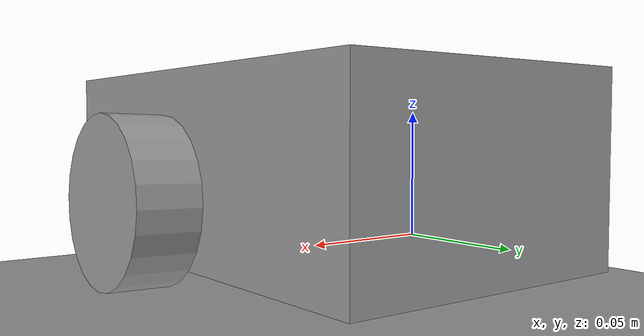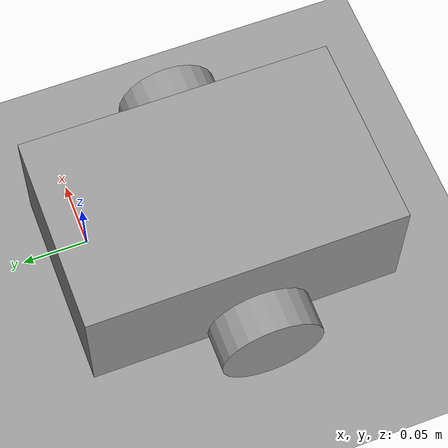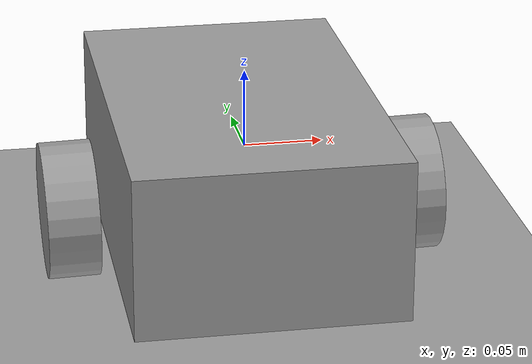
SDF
<?xml version='1.0'?>
<sdf version='1.6'>
  <model name='robot'>
    <link name='link_0'>
      <pose frame=''>-0.020075 -0.09365 0.024685 0 -0 0</pose>
      <inertial>
        <mass>0.00356581</mass>
        <inertia>
          <ixx>2.04408e-05</ixx>
          <ixy>0</ixy>
          <ixz>0</ixz>
          <iyy>9.7431e-06</iyy>
          <iyz>0</iyz>
          <izz>2.48992e-05</izz>
        </inertia>
        <pose frame=''>0 0 0 0 -0 0</pose>
      </inertial>
      <gravity>1</gravity>
      <self_collide>0</self_collide>
      <kinematic>0</kinematic>
      <visual name='visual'>
        <pose frame=''>0 0 0 0 -0 0</pose>
        <geometry>
          <box>
            <size>0.154584 0.244738 0.094299</size>
          </box>
        </geometry>
        <material>
          <lighting>1</lighting>
          <script>
            <uri>file://media/materials/scripts/gazebo.material</uri>
            <name>Gazebo/Grey</name>
          </script>
          <shader type='pixel'>
            <normal_map>__default__</normal_map>
          </shader>
          <ambient>0.3 0.3 0.3 1</ambient>
          <diffuse>0.7 0.7 0.7 1</diffuse>
          <specular>0.01 0.01 0.01 1</specular>
          <emissive>0 0 0 1</emissive>
        </material>
        <transparency>0</transparency>
        <cast_shadows>1</cast_shadows>
      </visual>
      <collision name='collision'>
        <laser_retro>0</laser_retro>
        <max_contacts>10</max_contacts>
        <pose frame=''>0 0 0 0 -0 0</pose>
        <geometry>
          <box>
            <size>0.154584 0.244738 0.094299</size>
          </box>
        </geometry>
        <surface>
          <friction>
            <ode>
              <mu>1</mu>
              <mu2>1</mu2>
              <fdir1>0 0 0</fdir1>
              <slip1>0</slip1>
              <slip2>0</slip2>
            </ode>
            <torsional>
              <coefficient>1</coefficient>
              <patch_radius>0</patch_radius>
              <surface_radius>0</surface_radius>
              <use_patch_radius>1</use_patch_radius>
              <ode>
                <slip>0</slip>
              </ode>
            </torsional>
          </friction>
          <bounce>
            <restitution_coefficient>0</restitution_coefficient>
            <threshold>1e+06</threshold>
          </bounce>
          <contact>
            <collide_without_contact>0</collide_without_contact>
            <collide_without_contact_bitmask>1</collide_without_contact_bitmask>
            <collide_bitmask>1</collide_bitmask>
            <ode>
              <soft_cfm>0</soft_cfm>
              <soft_erp>0.2</soft_erp>
              <kp>1e+13</kp>
              <kd>1</kd>
              <max_vel>0.01</max_vel>
              <min_depth>0</min_depth>
            </ode>
            <bullet>
              <split_impulse>1</split_impulse>
              <split_impulse_penetration_threshold>-0.01</split_impulse_penetration_threshold>
              <soft_cfm>0</soft_cfm>
              <soft_erp>0.2</soft_erp>
              <kp>1e+13</kp>
              <kd>1</kd>
            </bullet>
          </contact>
        </surface>
      </collision>
    </link>
    <link name='link_1'>
      <pose frame=''>0.08002 -0.099307 0.010533 0 1.54788 0</pose>
      <inertial>
        <mass>0.000191</mass>
        <inertia>
          <ixx>9e-08</ixx>
          <ixy>0</ixy>
          <ixz>0</ixz>
          <iyy>9e-08</iyy>
          <iyz>0</iyz>
          <izz>1.5e-07</izz>
        </inertia>
        <pose frame=''>0 0 0 0 -0 0</pose>
      </inertial>
      <gravity>1</gravity>
      <self_collide>0</self_collide>
      <kinematic>0</kinematic>
      <visual name='visual'>
        <pose frame=''>0 0 0 0 -0 0</pose>
        <geometry>
          <cylinder>
            <radius>0.0398834</radius>
            <length>0.0299914</length>
          </cylinder>
        </geometry>
        <material>
          <lighting>1</lighting>
          <script>
            <uri>file://media/materials/scripts/gazebo.material</uri>
            <name>Gazebo/Grey</name>
          </script>
          <shader type='pixel'>
            <normal_map>__default__</normal_map>
          </shader>
          <ambient>0.3 0.3 0.3 1</ambient>
          <diffuse>0.7 0.7 0.7 1</diffuse>
          <specular>0.01 0.01 0.01 1</specular>
          <emissive>0 0 0 1</emissive>
        </material>
        <transparency>0</transparency>
        <cast_shadows>1</cast_shadows>
      </visual>
      <collision name='collision'>
        <laser_retro>0</laser_retro>
        <max_contacts>10</max_contacts>
        <pose frame=''>0 0 0 0 -0 0</pose>
        <geometry>
          <cylinder>
            <radius>0.039883</radius>
            <length>0.029991</length>
          </cylinder>
        </geometry>
        <surface>
          <friction>
            <ode>
              <mu>1</mu>
              <mu2>1</mu2>
              <fdir1>0 0 0</fdir1>
              <slip1>0</slip1>
              <slip2>0</slip2>
            </ode>
            <torsional>
              <coefficient>1</coefficient>
              <patch_radius>0</patch_radius>
              <surface_radius>0</surface_radius>
              <use_patch_radius>1</use_patch_radius>
              <ode>
                <slip>0</slip>
              </ode>
            </torsional>
          </friction>
          <bounce>
            <restitution_coefficient>0</restitution_coefficient>
            <threshold>1e+06</threshold>
          </bounce>
          <contact>
            <collide_without_contact>0</collide_without_contact>
            <collide_without_contact_bitmask>1</collide_without_contact_bitmask>
            <collide_bitmask>1</collide_bitmask>
            <ode>
              <soft_cfm>0</soft_cfm>
              <soft_erp>0.2</soft_erp>
              <kp>1e+13</kp>
              <kd>1</kd>
              <max_vel>0.01</max_vel>
              <min_depth>0</min_depth>
            </ode>
            <bullet>
              <split_impulse>1</split_impulse>
              <split_impulse_penetration_threshold>-0.01</split_impulse_penetration_threshold>
              <soft_cfm>0</soft_cfm>
              <soft_erp>0.2</soft_erp>
              <kp>1e+13</kp>
              <kd>1</kd>
            </bullet>
          </contact>
        </surface>
      </collision>
    </link>
    <link name='link_1_clone'>
      <pose frame=''>-0.120848 -0.098153 0.007247 0 1.54788 0</pose>
      <inertial>
        <mass>0.000191</mass>
        <inertia>
          <ixx>9.02722e-08</ixx>
          <ixy>0</ixy>
          <ixz>0</ixz>
          <iyy>9.02722e-08</iyy>
          <iyz>0</iyz>
          <izz>1.51911e-07</izz>
        </inertia>
        <pose frame=''>0 0 0 0 -0 0</pose>
      </inertial>
      <visual name='visual'>
        <pose frame=''>0 0 0 0 -0 0</pose>
        <geometry>
          <cylinder>
            <radius>0.0398834</radius>
            <length>0.0299914</length>
          </cylinder>
        </geometry>
        <material>
          <lighting>1</lighting>
          <script>
            <uri>file://media/materials/scripts/gazebo.material</uri>
            <name>Gazebo/Grey</name>
          </script>
          <shader type='pixel'/>
          <ambient>0.3 0.3 0.3 1</ambient>
          <diffuse>0.7 0.7 0.7 1</diffuse>
          <specular>0.01 0.01 0.01 1</specular>
          <emissive>0 0 0 1</emissive>
        </material>
        <transparency>0</transparency>
        <cast_shadows>1</cast_shadows>
      </visual>
      <collision name='collision'>
        <laser_retro>0</laser_retro>
        <max_contacts>10</max_contacts>
        <pose frame=''>0 0 0 0 -0 0</pose>
        <geometry>
          <cylinder>
            <radius>0.039883</radius>
            <length>0.029991</length>
          </cylinder>
        </geometry>
        <surface>
          <friction>
            <ode>
              <mu>1</mu>
              <mu2>1</mu2>
              <fdir1>0 0 0</fdir1>
              <slip1>0</slip1>
              <slip2>0</slip2>
            </ode>
            <torsional>
              <coefficient>1</coefficient>
              <patch_radius>0</patch_radius>
              <surface_radius>0</surface_radius>
              <use_patch_radius>1</use_patch_radius>
              <ode>
                <slip>0</slip>
              </ode>
            </torsional>
          </friction>
          <bounce>
            <restitution_coefficient>0</restitution_coefficient>
            <threshold>1e+06</threshold>
          </bounce>
          <contact>
            <collide_without_contact>0</collide_without_contact>
            <collide_without_contact_bitmask>1</collide_without_contact_bitmask>
            <collide_bitmask>1</collide_bitmask>
            <ode>
              <soft_cfm>0</soft_cfm>
              <soft_erp>0.2</soft_erp>
              <kp>1e+13</kp>
              <kd>1</kd>
              <max_vel>0.01</max_vel>
              <min_depth>0</min_depth>
            </ode>
            <bullet>
              <split_impulse>1</split_impulse>
              <split_impulse_penetration_threshold>-0.01</split_impulse_penetration_threshold>
              <soft_cfm>0</soft_cfm>
              <soft_erp>0.2</soft_erp>
              <kp>1e+13</kp>
              <kd>1</kd>
            </bullet>
          </contact>
        </surface>
      </collision>
    </link>
    <model name='ground_plane'>
      <static>1</static>
      <link name='link'>
        <collision name='collision'>
          <geometry>
            <plane>
              <normal>0 0 1</normal>
              <size>100 100</size>
            </plane>
          </geometry>
          <surface>
            <contact>
              <collide_bitmask>65535</collide_bitmask>
            </contact>
            <friction>
              <ode>
                <mu>100</mu>
                <mu2>50</mu2>
              </ode>
            </friction>
          </surface>
        </collision>
        <visual name='visual'>
          <cast_shadows>0</cast_shadows>
          <geometry>
            <plane>
              <normal>0 0 1</normal>
              <size>100 100</size>
            </plane>
          </geometry>
          <material>
            <script>
              <uri>file://media/materials/scripts/gazebo.material</uri>
              <name>Gazebo/Grey</name>
            </script>
          </material>
        </visual>
      </link>
      <pose frame=''>0.060901 0.291107 -0.042465 0 -0 0</pose>
    </model>
    <joint name='link_1_JOINT_0' type='revolute'>
      <parent>link_1</parent>
      <child>link_0</child>
      <pose frame=''>0 0 0 0 -0 0</pose>
      <axis>
        <xyz>1 0 0</xyz>
        <use_parent_model_frame>0</use_parent_model_frame>
        <limit>
          <lower>-1.79769e+308</lower>
          <upper>1.79769e+308</upper>
          <effort>-1</effort>
          <velocity>-1</velocity>
        </limit>
        <dynamics>
          <spring_reference>0</spring_reference>
          <spring_stiffness>0</spring_stiffness>
          <damping>0</damping>
        </dynamics>
      </axis>
      <physics>
        <ode>
          <limit>
            <cfm>0</cfm>
            <erp>0.2</erp>
          </limit>
          <suspension>
            <cfm>0</cfm>
            <erp>0.2</erp>
          </suspension>
        </ode>
      </physics>
    </joint>
    <joint name='link_1_clone_JOINT_1' type='revolute'>
      <parent>link_1_clone</parent>
      <child>link_0</child>
      <pose frame=''>0 0 0 0 -0 0</pose>
      <axis>
        <xyz>1 0 0</xyz>
        <use_parent_model_frame>0</use_parent_model_frame>
        <limit>
          <lower>-1.79769e+308</lower>
          <upper>1.79769e+308</upper>
          <effort>-1</effort>
          <velocity>-1</velocity>
        </limit>
        <dynamics>
          <spring_reference>0</spring_reference>
          <spring_stiffness>0</spring_stiffness>
          <damping>0</damping>
        </dynamics>
      </axis>
      <physics>
        <ode>
          <limit>
            <cfm>0</cfm>
            <erp>0.2</erp>
          </limit>
          <suspension>
            <cfm>0</cfm>
            <erp>0.2</erp>
          </suspension>
        </ode>
      </physics>
    </joint>
    <static>0</static>
    <allow_auto_disable>1</allow_auto_disable>
  </model>
</sdf>
